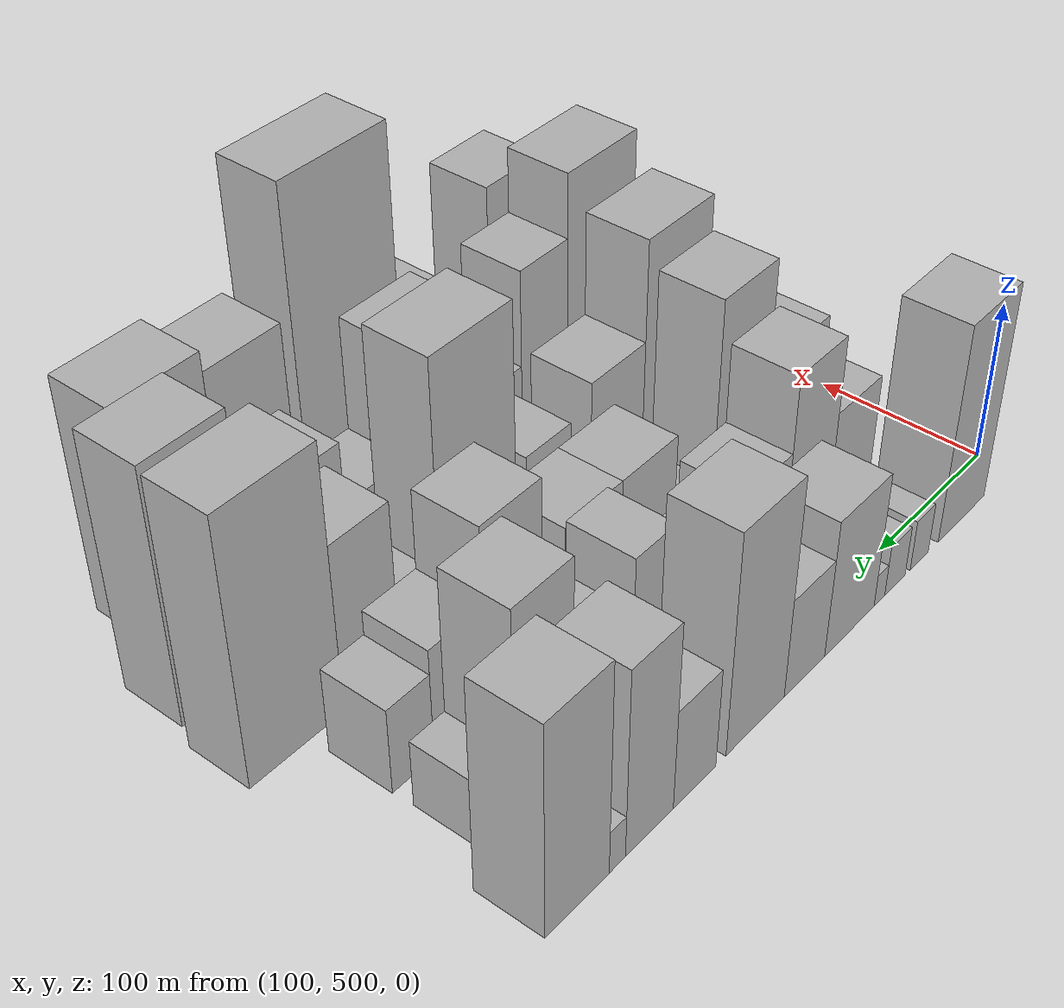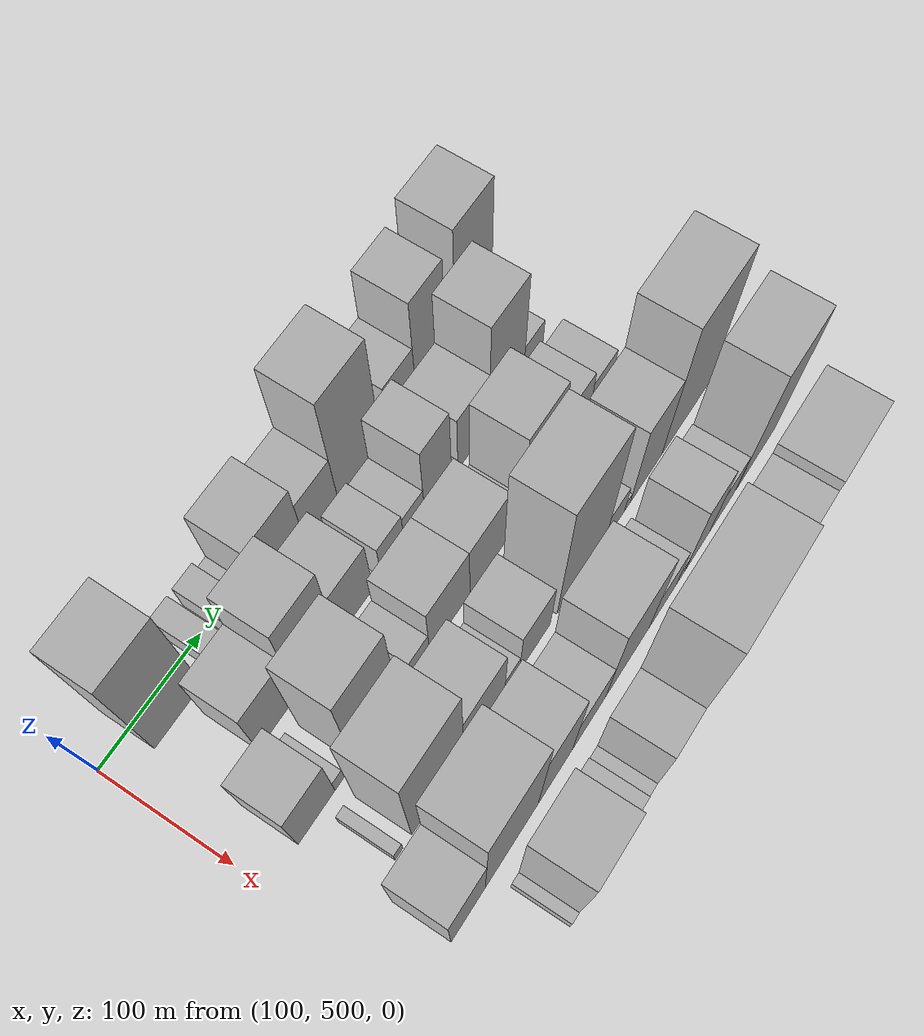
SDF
<sdf version="1.6">
 <world name="default">
  <model name="building_38">
   <static>1</static>
   <pose>100.0000 552.1882 0 0.000000 0.000000 0.000000</pose>
   <link name="link">
    <pose>0 0 69.00 0 0 0</pose>
    <collision name="collision"><geometry><box><size>40.0000 47.1673 138.0000</size></box></geometry></collision>
    <visual name="visual">
     <cast_shadows>0</cast_shadows>
     <geometry><box><size>40.0000 47.1673 138.0000</size></box></geometry>
     <material>
      <script>
       <uri>model://HANNAS_wall/materials/scripts</uri>
       <uri>model://HANNAS_wall/materials/textures</uri>
       <name>vrc/HANNAS_wall</name>
      </script>
     </material>
    </visual>
   </link>
  </model>
  <model name="building_39">
   <static>1</static>
   <pose>100.0000 594.6555 0 0.000000 0.000000 0.000000</pose>
   <link name="link">
    <pose>0 0 16.50 0 0 0</pose>
    <collision name="collision"><geometry><box><size>40.0000 17.7672 33.0000</size></box></geometry></collision>
    <visual name="visual">
     <cast_shadows>0</cast_shadows>
     <geometry><box><size>40.0000 17.7672 33.0000</size></box></geometry>
     <material>
      <script>
       <uri>model://HANNAS_wall/materials/scripts</uri>
       <uri>model://HANNAS_wall/materials/textures</uri>
       <name>vrc/HANNAS_wall</name>
      </script>
     </material>
    </visual>
   </link>
  </model>
  <model name="building_40">
   <static>1</static>
   <pose>100.0000 618.3071 0 0.000000 0.000000 0.000000</pose>
   <link name="link">
    <pose>0 0 16.50 0 0 0</pose>
    <collision name="collision"><geometry><box><size>40.0000 19.5360 33.0000</size></box></geometry></collision>
    <visual name="visual">
     <cast_shadows>0</cast_shadows>
     <geometry><box><size>40.0000 19.5360 33.0000</size></box></geometry>
     <material>
      <script>
       <uri>model://HANNAS_wall/materials/scripts</uri>
       <uri>model://HANNAS_wall/materials/textures</uri>
       <name>vrc/HANNAS_wall</name>
      </script>
     </material>
    </visual>
   </link>
  </model>
  <model name="building_41">
   <static>1</static>
   <pose>100.0000 633.0724 0 0.000000 0.000000 0.000000</pose>
   <link name="link">
    <pose>0 0 10.50 0 0 0</pose>
    <collision name="collision"><geometry><box><size>40.0000 9.9947 21.0000</size></box></geometry></collision>
    <visual name="visual">
     <cast_shadows>0</cast_shadows>
     <geometry><box><size>40.0000 9.9947 21.0000</size></box></geometry>
     <material>
      <script>
       <uri>model://HANNAS_wall/materials/scripts</uri>
       <uri>model://HANNAS_wall/materials/textures</uri>
       <name>vrc/HANNAS_wall</name>
      </script>
     </material>
    </visual>
   </link>
  </model>
  <model name="building_42">
   <static>1</static>
   <pose>100.0000 660.5055 0 0.000000 0.000000 0.000000</pose>
   <link name="link">
    <pose>0 0 43.50 0 0 0</pose>
    <collision name="collision"><geometry><box><size>40.0000 44.8715 87.0000</size></box></geometry></collision>
    <visual name="visual">
     <cast_shadows>0</cast_shadows>
     <geometry><box><size>40.0000 44.8715 87.0000</size></box></geometry>
     <material>
      <script>
       <uri>model://HANNAS_wall/materials/scripts</uri>
       <uri>model://HANNAS_wall/materials/textures</uri>
       <name>vrc/HANNAS_wall</name>
      </script>
     </material>
    </visual>
   </link>
  </model>
  <model name="building_43">
   <static>1</static>
   <pose>100.0000 700.4479 0 0.000000 0.000000 0.000000</pose>
   <link name="link">
    <pose>0 0 31.50 0 0 0</pose>
    <collision name="collision"><geometry><box><size>40.0000 35.0133 63.0000</size></box></geometry></collision>
    <visual name="visual">
     <cast_shadows>0</cast_shadows>
     <geometry><box><size>40.0000 35.0133 63.0000</size></box></geometry>
     <material>
      <script>
       <uri>model://HANNAS_wall/materials/scripts</uri>
       <uri>model://HANNAS_wall/materials/textures</uri>
       <name>vrc/HANNAS_wall</name>
      </script>
     </material>
    </visual>
   </link>
  </model>
  <model name="building_44">
   <static>1</static>
   <pose>100.0000 741.8264 0 0.000000 0.000000 0.000000</pose>
   <link name="link">
    <pose>0 0 69.00 0 0 0</pose>
    <collision name="collision"><geometry><box><size>40.0000 47.7437 138.0000</size></box></geometry></collision>
    <visual name="visual">
     <cast_shadows>0</cast_shadows>
     <geometry><box><size>40.0000 47.7437 138.0000</size></box></geometry>
     <material>
      <script>
       <uri>model://HANNAS_wall/materials/scripts</uri>
       <uri>model://HANNAS_wall/materials/textures</uri>
       <name>vrc/HANNAS_wall</name>
      </script>
     </material>
    </visual>
   </link>
  </model>
  <model name="building_45">
   <static>1</static>
   <pose>100.0000 790.0585 0 0.000000 0.000000 0.000000</pose>
   <link name="link">
    <pose>0 0 31.50 0 0 0</pose>
    <collision name="collision"><geometry><box><size>40.0000 32.7206 63.0000</size></box></geometry></collision>
    <visual name="visual">
     <cast_shadows>0</cast_shadows>
     <geometry><box><size>40.0000 32.7206 63.0000</size></box></geometry>
     <material>
      <script>
       <uri>model://HANNAS_wall/materials/scripts</uri>
       <uri>model://HANNAS_wall/materials/textures</uri>
       <name>vrc/HANNAS_wall</name>
      </script>
     </material>
    </visual>
   </link>
  </model>
  <model name="building_46">
   <static>1</static>
   <pose>100.0000 824.0037 0 0.000000 0.000000 0.000000</pose>
   <link name="link">
    <pose>0 0 58.50 0 0 0</pose>
    <collision name="collision"><geometry><box><size>40.0000 35.1697 117.0000</size></box></geometry></collision>
    <visual name="visual">
     <cast_shadows>0</cast_shadows>
     <geometry><box><size>40.0000 35.1697 117.0000</size></box></geometry>
     <material>
      <script>
       <uri>model://HANNAS_wall/materials/scripts</uri>
       <uri>model://HANNAS_wall/materials/textures</uri>
       <name>vrc/HANNAS_wall</name>
      </script>
     </material>
    </visual>
   </link>
  </model>
  <model name="building_47">
   <static>1</static>
   <pose>100.0000 847.3226 0 0.000000 0.000000 0.000000</pose>
   <link name="link">
    <pose>0 0 13.50 0 0 0</pose>
    <collision name="collision"><geometry><box><size>40.0000 11.4682 27.0000</size></box></geometry></collision>
    <visual name="visual">
     <cast_shadows>0</cast_shadows>
     <geometry><box><size>40.0000 11.4682 27.0000</size></box></geometry>
     <material>
      <script>
       <uri>model://HANNAS_wall/materials/scripts</uri>
       <uri>model://HANNAS_wall/materials/textures</uri>
       <name>vrc/HANNAS_wall</name>
      </script>
     </material>
    </visual>
   </link>
  </model>
  <model name="building_48">
   <static>1</static>
   <pose>100.0000 875.0531 0 0.000000 0.000000 0.000000</pose>
   <link name="link">
    <pose>0 0 66.00 0 0 0</pose>
    <collision name="collision"><geometry><box><size>40.0000 43.9929 132.0000</size></box></geometry></collision>
    <visual name="visual">
     <cast_shadows>0</cast_shadows>
     <geometry><box><size>40.0000 43.9929 132.0000</size></box></geometry>
     <material>
      <script>
       <uri>model://HANNAS_wall/materials/scripts</uri>
       <uri>model://HANNAS_wall/materials/textures</uri>
       <name>vrc/HANNAS_wall</name>
      </script>
     </material>
    </visual>
   </link>
  </model>
  <model name="building_88">
   <static>1</static>
   <pose>152.0000 581.7255 0 0.000000 0.000000 0.000000</pose>
   <link name="link">
    <pose>0 0 37.50 0 0 0</pose>
    <collision name="collision"><geometry><box><size>40.0000 40.5340 75.0000</size></box></geometry></collision>
    <visual name="visual">
     <cast_shadows>0</cast_shadows>
     <geometry><box><size>40.0000 40.5340 75.0000</size></box></geometry>
     <material>
      <script>
       <uri>model://HANNAS_wall/materials/scripts</uri>
       <uri>model://HANNAS_wall/materials/textures</uri>
       <name>vrc/HANNAS_wall</name>
      </script>
     </material>
    </visual>
   </link>
  </model>
  <model name="building_89">
   <static>1</static>
   <pose>152.0000 622.5779 0 0.000000 0.000000 0.000000</pose>
   <link name="link">
    <pose>0 0 61.50 0 0 0</pose>
    <collision name="collision"><geometry><box><size>40.0000 41.1708 123.0000</size></box></geometry></collision>
    <visual name="visual">
     <cast_shadows>0</cast_shadows>
     <geometry><box><size>40.0000 41.1708 123.0000</size></box></geometry>
     <material>
      <script>
       <uri>model://HANNAS_wall/materials/scripts</uri>
       <uri>model://HANNAS_wall/materials/textures</uri>
       <name>vrc/HANNAS_wall</name>
      </script>
     </material>
    </visual>
   </link>
  </model>
  <model name="building_90">
   <static>1</static>
   <pose>152.0000 662.4234 0 0.000000 0.000000 0.000000</pose>
   <link name="link">
    <pose>0 0 37.50 0 0 0</pose>
    <collision name="collision"><geometry><box><size>40.0000 38.5201 75.0000</size></box></geometry></collision>
    <visual name="visual">
     <cast_shadows>0</cast_shadows>
     <geometry><box><size>40.0000 38.5201 75.0000</size></box></geometry>
     <material>
      <script>
       <uri>model://HANNAS_wall/materials/scripts</uri>
       <uri>model://HANNAS_wall/materials/textures</uri>
       <name>vrc/HANNAS_wall</name>
      </script>
     </material>
    </visual>
   </link>
  </model>
  <model name="building_91">
   <static>1</static>
   <pose>152.0000 703.5241 0 0.000000 0.000000 0.000000</pose>
   <link name="link">
    <pose>0 0 24.00 0 0 0</pose>
    <collision name="collision"><geometry><box><size>40.0000 25.6815 48.0000</size></box></geometry></collision>
    <visual name="visual">
     <cast_shadows>0</cast_shadows>
     <geometry><box><size>40.0000 25.6815 48.0000</size></box></geometry>
     <material>
      <script>
       <uri>model://HANNAS_wall/materials/scripts</uri>
       <uri>model://HANNAS_wall/materials/textures</uri>
       <name>vrc/HANNAS_wall</name>
      </script>
     </material>
    </visual>
   </link>
  </model>
  <model name="building_92">
   <static>1</static>
   <pose>152.0000 727.7522 0 0.000000 0.000000 0.000000</pose>
   <link name="link">
    <pose>0 0 21.00 0 0 0</pose>
    <collision name="collision"><geometry><box><size>40.0000 22.7747 42.0000</size></box></geometry></collision>
    <visual name="visual">
     <cast_shadows>0</cast_shadows>
     <geometry><box><size>40.0000 22.7747 42.0000</size></box></geometry>
     <material>
      <script>
       <uri>model://HANNAS_wall/materials/scripts</uri>
       <uri>model://HANNAS_wall/materials/textures</uri>
       <name>vrc/HANNAS_wall</name>
      </script>
     </material>
    </visual>
   </link>
  </model>
  <model name="building_93">
   <static>1</static>
   <pose>152.0000 754.4738 0 0.000000 0.000000 0.000000</pose>
   <link name="link">
    <pose>0 0 48.00 0 0 0</pose>
    <collision name="collision"><geometry><box><size>40.0000 30.6684 96.0000</size></box></geometry></collision>
    <visual name="visual">
     <cast_shadows>0</cast_shadows>
     <geometry><box><size>40.0000 30.6684 96.0000</size></box></geometry>
     <material>
      <script>
       <uri>model://HANNAS_wall/materials/scripts</uri>
       <uri>model://HANNAS_wall/materials/textures</uri>
       <name>vrc/HANNAS_wall</name>
      </script>
     </material>
    </visual>
   </link>
  </model>
  <model name="building_94">
   <static>1</static>
   <pose>152.0000 773.4286 0 0.000000 0.000000 0.000000</pose>
   <link name="link">
    <pose>0 0 7.50 0 0 0</pose>
    <collision name="collision"><geometry><box><size>40.0000 7.2412 15.0000</size></box></geometry></collision>
    <visual name="visual">
     <cast_shadows>0</cast_shadows>
     <geometry><box><size>40.0000 7.2412 15.0000</size></box></geometry>
     <material>
      <script>
       <uri>model://HANNAS_wall/materials/scripts</uri>
       <uri>model://HANNAS_wall/materials/textures</uri>
       <name>vrc/HANNAS_wall</name>
      </script>
     </material>
    </visual>
   </link>
  </model>
  <model name="building_95">
   <static>1</static>
   <pose>152.0000 795.3363 0 0.000000 0.000000 0.000000</pose>
   <link name="link">
    <pose>0 0 36.00 0 0 0</pose>
    <collision name="collision"><geometry><box><size>40.0000 36.5742 72.0000</size></box></geometry></collision>
    <visual name="visual">
     <cast_shadows>0</cast_shadows>
     <geometry><box><size>40.0000 36.5742 72.0000</size></box></geometry>
     <material>
      <script>
       <uri>model://HANNAS_wall/materials/scripts</uri>
       <uri>model://HANNAS_wall/materials/textures</uri>
       <name>vrc/HANNAS_wall</name>
      </script>
     </material>
    </visual>
   </link>
  </model>
  <model name="building_96">
   <static>1</static>
   <pose>152.0000 834.3439 0 0.000000 0.000000 0.000000</pose>
   <link name="link">
    <pose>0 0 64.50 0 0 0</pose>
    <collision name="collision"><geometry><box><size>40.0000 41.4409 129.0000</size></box></geometry></collision>
    <visual name="visual">
     <cast_shadows>0</cast_shadows>
     <geometry><box><size>40.0000 41.4409 129.0000</size></box></geometry>
     <material>
      <script>
       <uri>model://HANNAS_wall/materials/scripts</uri>
       <uri>model://HANNAS_wall/materials/textures</uri>
       <name>vrc/HANNAS_wall</name>
      </script>
     </material>
    </visual>
   </link>
  </model>
  <model name="building_97">
   <static>1</static>
   <pose>152.0000 866.7013 0 0.000000 0.000000 0.000000</pose>
   <link name="link">
    <pose>0 0 21.00 0 0 0</pose>
    <collision name="collision"><geometry><box><size>40.0000 23.2739 42.0000</size></box></geometry></collision>
    <visual name="visual">
     <cast_shadows>0</cast_shadows>
     <geometry><box><size>40.0000 23.2739 42.0000</size></box></geometry>
     <material>
      <script>
       <uri>model://HANNAS_wall/materials/scripts</uri>
       <uri>model://HANNAS_wall/materials/textures</uri>
       <name>vrc/HANNAS_wall</name>
      </script>
     </material>
    </visual>
   </link>
  </model>
  <model name="building_140">
   <static>1</static>
   <pose>204.0000 548.4280 0 0.000000 0.000000 0.000000</pose>
   <link name="link">
    <pose>0 0 36.00 0 0 0</pose>
    <collision name="collision"><geometry><box><size>40.0000 37.1659 72.0000</size></box></geometry></collision>
    <visual name="visual">
     <cast_shadows>0</cast_shadows>
     <geometry><box><size>40.0000 37.1659 72.0000</size></box></geometry>
     <material>
      <script>
       <uri>model://HANNAS_wall/materials/scripts</uri>
       <uri>model://HANNAS_wall/materials/textures</uri>
       <name>vrc/HANNAS_wall</name>
      </script>
     </material>
    </visual>
   </link>
  </model>
  <model name="building_141">
   <static>1</static>
   <pose>204.0000 571.7912 0 0.000000 0.000000 0.000000</pose>
   <link name="link">
    <pose>0 0 10.50 0 0 0</pose>
    <collision name="collision"><geometry><box><size>40.0000 9.5604 21.0000</size></box></geometry></collision>
    <visual name="visual">
     <cast_shadows>0</cast_shadows>
     <geometry><box><size>40.0000 9.5604 21.0000</size></box></geometry>
     <material>
      <script>
       <uri>model://HANNAS_wall/materials/scripts</uri>
       <uri>model://HANNAS_wall/materials/textures</uri>
       <name>vrc/HANNAS_wall</name>
      </script>
     </material>
    </visual>
   </link>
  </model>
  <model name="building_142">
   <static>1</static>
   <pose>204.0000 609.7211 0 0.000000 0.000000 0.000000</pose>
   <link name="link">
    <pose>0 0 69.00 0 0 0</pose>
    <collision name="collision"><geometry><box><size>40.0000 46.2994 138.0000</size></box></geometry></collision>
    <visual name="visual">
     <cast_shadows>0</cast_shadows>
     <geometry><box><size>40.0000 46.2994 138.0000</size></box></geometry>
     <material>
      <script>
       <uri>model://HANNAS_wall/materials/scripts</uri>
       <uri>model://HANNAS_wall/materials/textures</uri>
       <name>vrc/HANNAS_wall</name>
      </script>
     </material>
    </visual>
   </link>
  </model>
  <model name="building_143">
   <static>1</static>
   <pose>204.0000 641.4831 0 0.000000 0.000000 0.000000</pose>
   <link name="link">
    <pose>0 0 10.50 0 0 0</pose>
    <collision name="collision"><geometry><box><size>40.0000 9.2246 21.0000</size></box></geometry></collision>
    <visual name="visual">
     <cast_shadows>0</cast_shadows>
     <geometry><box><size>40.0000 9.2246 21.0000</size></box></geometry>
     <material>
      <script>
       <uri>model://HANNAS_wall/materials/scripts</uri>
       <uri>model://HANNAS_wall/materials/textures</uri>
       <name>vrc/HANNAS_wall</name>
      </script>
     </material>
    </visual>
   </link>
  </model>
  <model name="building_144">
   <static>1</static>
   <pose>204.0000 656.4562 0 0.000000 0.000000 0.000000</pose>
   <link name="link">
    <pose>0 0 18.00 0 0 0</pose>
    <collision name="collision"><geometry><box><size>40.0000 20.7214 36.0000</size></box></geometry></collision>
    <visual name="visual">
     <cast_shadows>0</cast_shadows>
     <geometry><box><size>40.0000 20.7214 36.0000</size></box></geometry>
     <material>
      <script>
       <uri>model://HANNAS_wall/materials/scripts</uri>
       <uri>model://HANNAS_wall/materials/textures</uri>
       <name>vrc/HANNAS_wall</name>
      </script>
     </material>
    </visual>
   </link>
  </model>
  <model name="building_145">
   <static>1</static>
   <pose>204.0000 689.1216 0 0.000000 0.000000 0.000000</pose>
   <link name="link">
    <pose>0 0 37.50 0 0 0</pose>
    <collision name="collision"><geometry><box><size>40.0000 44.6094 75.0000</size></box></geometry></collision>
    <visual name="visual">
     <cast_shadows>0</cast_shadows>
     <geometry><box><size>40.0000 44.6094 75.0000</size></box></geometry>
     <material>
      <script>
       <uri>model://HANNAS_wall/materials/scripts</uri>
       <uri>model://HANNAS_wall/materials/textures</uri>
       <name>vrc/HANNAS_wall</name>
      </script>
     </material>
    </visual>
   </link>
  </model>
  <model name="building_146">
   <static>1</static>
   <pose>204.0000 733.4616 0 0.000000 0.000000 0.000000</pose>
   <link name="link">
    <pose>0 0 37.50 0 0 0</pose>
    <collision name="collision"><geometry><box><size>40.0000 44.0707 75.0000</size></box></geometry></collision>
    <visual name="visual">
     <cast_shadows>0</cast_shadows>
     <geometry><box><size>40.0000 44.0707 75.0000</size></box></geometry>
     <material>
      <script>
       <uri>model://HANNAS_wall/materials/scripts</uri>
       <uri>model://HANNAS_wall/materials/textures</uri>
       <name>vrc/HANNAS_wall</name>
      </script>
     </material>
    </visual>
   </link>
  </model>
  <model name="building_147">
   <static>1</static>
   <pose>204.0000 763.9253 0 0.000000 0.000000 0.000000</pose>
   <link name="link">
    <pose>0 0 16.50 0 0 0</pose>
    <collision name="collision"><geometry><box><size>40.0000 16.8568 33.0000</size></box></geometry></collision>
    <visual name="visual">
     <cast_shadows>0</cast_shadows>
     <geometry><box><size>40.0000 16.8568 33.0000</size></box></geometry>
     <material>
      <script>
       <uri>model://HANNAS_wall/materials/scripts</uri>
       <uri>model://HANNAS_wall/materials/textures</uri>
       <name>vrc/HANNAS_wall</name>
      </script>
     </material>
    </visual>
   </link>
  </model>
  <model name="building_148">
   <static>1</static>
   <pose>204.0000 793.7273 0 0.000000 0.000000 0.000000</pose>
   <link name="link">
    <pose>0 0 58.50 0 0 0</pose>
    <collision name="collision"><geometry><box><size>40.0000 42.7472 117.0000</size></box></geometry></collision>
    <visual name="visual">
     <cast_shadows>0</cast_shadows>
     <geometry><box><size>40.0000 42.7472 117.0000</size></box></geometry>
     <material>
      <script>
       <uri>model://HANNAS_wall/materials/scripts</uri>
       <uri>model://HANNAS_wall/materials/textures</uri>
       <name>vrc/HANNAS_wall</name>
      </script>
     </material>
    </visual>
   </link>
  </model>
  <model name="building_149">
   <static>1</static>
   <pose>204.0000 833.0762 0 0.000000 0.000000 0.000000</pose>
   <link name="link">
    <pose>0 0 34.50 0 0 0</pose>
    <collision name="collision"><geometry><box><size>40.0000 35.9505 69.0000</size></box></geometry></collision>
    <visual name="visual">
     <cast_shadows>0</cast_shadows>
     <geometry><box><size>40.0000 35.9505 69.0000</size></box></geometry>
     <material>
      <script>
       <uri>model://HANNAS_wall/materials/scripts</uri>
       <uri>model://HANNAS_wall/materials/textures</uri>
       <name>vrc/HANNAS_wall</name>
      </script>
     </material>
    </visual>
   </link>
  </model>
  <model name="building_150">
   <static>1</static>
   <pose>204.0000 865.1803 0 0.000000 0.000000 0.000000</pose>
   <link name="link">
    <pose>0 0 27.00 0 0 0</pose>
    <collision name="collision"><geometry><box><size>40.0000 28.2576 54.0000</size></box></geometry></collision>
    <visual name="visual">
     <cast_shadows>0</cast_shadows>
     <geometry><box><size>40.0000 28.2576 54.0000</size></box></geometry>
     <material>
      <script>
       <uri>model://HANNAS_wall/materials/scripts</uri>
       <uri>model://HANNAS_wall/materials/textures</uri>
       <name>vrc/HANNAS_wall</name>
      </script>
     </material>
    </visual>
   </link>
  </model>
  <model name="building_186">
   <static>1</static>
   <pose>256.0000 557.1760 0 0.000000 0.000000 0.000000</pose>
   <link name="link">
    <pose>0 0 9.00 0 0 0</pose>
    <collision name="collision"><geometry><box><size>40.0000 8.1659 18.0000</size></box></geometry></collision>
    <visual name="visual">
     <cast_shadows>0</cast_shadows>
     <geometry><box><size>40.0000 8.1659 18.0000</size></box></geometry>
     <material>
      <script>
       <uri>model://HANNAS_wall/materials/scripts</uri>
       <uri>model://HANNAS_wall/materials/textures</uri>
       <name>vrc/HANNAS_wall</name>
      </script>
     </material>
    </visual>
   </link>
  </model>
  <model name="building_187">
   <static>1</static>
   <pose>256.0000 597.7654 0 0.000000 0.000000 0.000000</pose>
   <link name="link">
    <pose>0 0 73.50 0 0 0</pose>
    <collision name="collision"><geometry><box><size>40.0000 55.0129 147.0000</size></box></geometry></collision>
    <visual name="visual">
     <cast_shadows>0</cast_shadows>
     <geometry><box><size>40.0000 55.0129 147.0000</size></box></geometry>
     <material>
      <script>
       <uri>model://HANNAS_wall/materials/scripts</uri>
       <uri>model://HANNAS_wall/materials/textures</uri>
       <name>vrc/HANNAS_wall</name>
      </script>
     </material>
    </visual>
   </link>
  </model>
  <model name="building_188">
   <static>1</static>
   <pose>256.0000 647.6145 0 0.000000 0.000000 0.000000</pose>
   <link name="link">
    <pose>0 0 42.00 0 0 0</pose>
    <collision name="collision"><geometry><box><size>40.0000 44.6853 84.0000</size></box></geometry></collision>
    <visual name="visual">
     <cast_shadows>0</cast_shadows>
     <geometry><box><size>40.0000 44.6853 84.0000</size></box></geometry>
     <material>
      <script>
       <uri>model://HANNAS_wall/materials/scripts</uri>
       <uri>model://HANNAS_wall/materials/textures</uri>
       <name>vrc/HANNAS_wall</name>
      </script>
     </material>
    </visual>
   </link>
  </model>
  <model name="building_189">
   <static>1</static>
   <pose>256.0000 678.3156 0 0.000000 0.000000 0.000000</pose>
   <link name="link">
    <pose>0 0 15.00 0 0 0</pose>
    <collision name="collision"><geometry><box><size>40.0000 16.7168 30.0000</size></box></geometry></collision>
    <visual name="visual">
     <cast_shadows>0</cast_shadows>
     <geometry><box><size>40.0000 16.7168 30.0000</size></box></geometry>
     <material>
      <script>
       <uri>model://HANNAS_wall/materials/scripts</uri>
       <uri>model://HANNAS_wall/materials/textures</uri>
       <name>vrc/HANNAS_wall</name>
      </script>
     </material>
    </visual>
   </link>
  </model>
  <model name="building_190">
   <static>1</static>
   <pose>256.0000 704.2560 0 0.000000 0.000000 0.000000</pose>
   <link name="link">
    <pose>0 0 34.50 0 0 0</pose>
    <collision name="collision"><geometry><box><size>40.0000 35.1640 69.0000</size></box></geometry></collision>
    <visual name="visual">
     <cast_shadows>0</cast_shadows>
     <geometry><box><size>40.0000 35.1640 69.0000</size></box></geometry>
     <material>
      <script>
       <uri>model://HANNAS_wall/materials/scripts</uri>
       <uri>model://HANNAS_wall/materials/textures</uri>
       <name>vrc/HANNAS_wall</name>
      </script>
     </material>
    </visual>
   </link>
  </model>
  <model name="building_191">
   <static>1</static>
   <pose>256.0000 758.6335 0 0.000000 0.000000 0.000000</pose>
   <link name="link">
    <pose>0 0 84.00 0 0 0</pose>
    <collision name="collision"><geometry><box><size>40.0000 57.5908 168.0000</size></box></geometry></collision>
    <visual name="visual">
     <cast_shadows>0</cast_shadows>
     <geometry><box><size>40.0000 57.5908 168.0000</size></box></geometry>
     <material>
      <script>
       <uri>model://HANNAS_wall/materials/scripts</uri>
       <uri>model://HANNAS_wall/materials/textures</uri>
       <name>vrc/HANNAS_wall</name>
      </script>
     </material>
    </visual>
   </link>
  </model>
  <model name="building_192">
   <static>1</static>
   <pose>256.0000 798.9391 0 0.000000 0.000000 0.000000</pose>
   <link name="link">
    <pose>0 0 19.50 0 0 0</pose>
    <collision name="collision"><geometry><box><size>40.0000 23.0204 39.0000</size></box></geometry></collision>
    <visual name="visual">
     <cast_shadows>0</cast_shadows>
     <geometry><box><size>40.0000 23.0204 39.0000</size></box></geometry>
     <material>
      <script>
       <uri>model://HANNAS_wall/materials/scripts</uri>
       <uri>model://HANNAS_wall/materials/textures</uri>
       <name>vrc/HANNAS_wall</name>
      </script>
     </material>
    </visual>
   </link>
  </model>
  <model name="building_193">
   <static>1</static>
   <pose>256.0000 814.0816 0 0.000000 0.000000 0.000000</pose>
   <link name="link">
    <pose>0 0 7.50 0 0 0</pose>
    <collision name="collision"><geometry><box><size>40.0000 7.2647 15.0000</size></box></geometry></collision>
    <visual name="visual">
     <cast_shadows>0</cast_shadows>
     <geometry><box><size>40.0000 7.2647 15.0000</size></box></geometry>
     <material>
      <script>
       <uri>model://HANNAS_wall/materials/scripts</uri>
       <uri>model://HANNAS_wall/materials/textures</uri>
       <name>vrc/HANNAS_wall</name>
      </script>
     </material>
    </visual>
   </link>
  </model>
  <model name="building_194">
   <static>1</static>
   <pose>256.0000 837.2742 0 0.000000 0.000000 0.000000</pose>
   <link name="link">
    <pose>0 0 52.50 0 0 0</pose>
    <collision name="collision"><geometry><box><size>40.0000 39.1204 105.0000</size></box></geometry></collision>
    <visual name="visual">
     <cast_shadows>0</cast_shadows>
     <geometry><box><size>40.0000 39.1204 105.0000</size></box></geometry>
     <material>
      <script>
       <uri>model://HANNAS_wall/materials/scripts</uri>
       <uri>model://HANNAS_wall/materials/textures</uri>
       <name>vrc/HANNAS_wall</name>
      </script>
     </material>
    </visual>
   </link>
  </model>
  <model name="building_195">
   <static>1</static>
   <pose>256.0000 887.6206 0 0.000000 0.000000 0.000000</pose>
   <link name="link">
    <pose>0 0 82.50 0 0 0</pose>
    <collision name="collision"><geometry><box><size>40.0000 61.5723 165.0000</size></box></geometry></collision>
    <visual name="visual">
     <cast_shadows>0</cast_shadows>
     <geometry><box><size>40.0000 61.5723 165.0000</size></box></geometry>
     <material>
      <script>
       <uri>model://HANNAS_wall/materials/scripts</uri>
       <uri>model://HANNAS_wall/materials/textures</uri>
       <name>vrc/HANNAS_wall</name>
      </script>
     </material>
    </visual>
   </link>
  </model>
  <model name="building_236">
   <static>1</static>
   <pose>308.0000 550.7804 0 0.000000 0.000000 0.000000</pose>
   <link name="link">
    <pose>0 0 51.00 0 0 0</pose>
    <collision name="collision"><geometry><box><size>40.0000 35.3964 102.0000</size></box></geometry></collision>
    <visual name="visual">
     <cast_shadows>0</cast_shadows>
     <geometry><box><size>40.0000 35.3964 102.0000</size></box></geometry>
     <material>
      <script>
       <uri>model://HANNAS_wall/materials/scripts</uri>
       <uri>model://HANNAS_wall/materials/textures</uri>
       <name>vrc/HANNAS_wall</name>
      </script>
     </material>
    </visual>
   </link>
  </model>
  <model name="building_237">
   <static>1</static>
   <pose>308.0000 596.7725 0 0.000000 0.000000 0.000000</pose>
   <link name="link">
    <pose>0 0 82.50 0 0 0</pose>
    <collision name="collision"><geometry><box><size>40.0000 56.5878 165.0000</size></box></geometry></collision>
    <visual name="visual">
     <cast_shadows>0</cast_shadows>
     <geometry><box><size>40.0000 56.5878 165.0000</size></box></geometry>
     <material>
      <script>
       <uri>model://HANNAS_wall/materials/scripts</uri>
       <uri>model://HANNAS_wall/materials/textures</uri>
       <name>vrc/HANNAS_wall</name>
      </script>
     </material>
    </visual>
   </link>
  </model>
  <model name="building_238">
   <static>1</static>
   <pose>308.0000 644.1979 0 0.000000 0.000000 0.000000</pose>
   <link name="link">
    <pose>0 0 63.00 0 0 0</pose>
    <collision name="collision"><geometry><box><size>40.0000 38.2628 126.0000</size></box></geometry></collision>
    <visual name="visual">
     <cast_shadows>0</cast_shadows>
     <geometry><box><size>40.0000 38.2628 126.0000</size></box></geometry>
     <material>
      <script>
       <uri>model://HANNAS_wall/materials/scripts</uri>
       <uri>model://HANNAS_wall/materials/textures</uri>
       <name>vrc/HANNAS_wall</name>
      </script>
     </material>
    </visual>
   </link>
  </model>
  <model name="building_239">
   <static>1</static>
   <pose>308.0000 682.3646 0 0.000000 0.000000 0.000000</pose>
   <link name="link">
    <pose>0 0 33.00 0 0 0</pose>
    <collision name="collision"><geometry><box><size>40.0000 38.0706 66.0000</size></box></geometry></collision>
    <visual name="visual">
     <cast_shadows>0</cast_shadows>
     <geometry><box><size>40.0000 38.0706 66.0000</size></box></geometry>
     <material>
      <script>
       <uri>model://HANNAS_wall/materials/scripts</uri>
       <uri>model://HANNAS_wall/materials/textures</uri>
       <name>vrc/HANNAS_wall</name>
      </script>
     </material>
    </visual>
   </link>
  </model>
  <model name="building_240">
   <static>1</static>
   <pose>308.0000 726.9366 0 0.000000 0.000000 0.000000</pose>
   <link name="link">
    <pose>0 0 64.50 0 0 0</pose>
    <collision name="collision"><geometry><box><size>40.0000 51.0733 129.0000</size></box></geometry></collision>
    <visual name="visual">
     <cast_shadows>0</cast_shadows>
     <geometry><box><size>40.0000 51.0733 129.0000</size></box></geometry>
     <material>
      <script>
       <uri>model://HANNAS_wall/materials/scripts</uri>
       <uri>model://HANNAS_wall/materials/textures</uri>
       <name>vrc/HANNAS_wall</name>
      </script>
     </material>
    </visual>
   </link>
  </model>
  <model name="building_241">
   <static>1</static>
   <pose>308.0000 769.2358 0 0.000000 0.000000 0.000000</pose>
   <link name="link">
    <pose>0 0 30.00 0 0 0</pose>
    <collision name="collision"><geometry><box><size>40.0000 33.5252 60.0000</size></box></geometry></collision>
    <visual name="visual">
     <cast_shadows>0</cast_shadows>
     <geometry><box><size>40.0000 33.5252 60.0000</size></box></geometry>
     <material>
      <script>
       <uri>model://HANNAS_wall/materials/scripts</uri>
       <uri>model://HANNAS_wall/materials/textures</uri>
       <name>vrc/HANNAS_wall</name>
      </script>
     </material>
    </visual>
   </link>
  </model>
  <model name="building_242">
   <static>1</static>
   <pose>308.0000 791.3155 0 0.000000 0.000000 0.000000</pose>
   <link name="link">
    <pose>0 0 12.00 0 0 0</pose>
    <collision name="collision"><geometry><box><size>40.0000 10.6342 24.0000</size></box></geometry></collision>
    <visual name="visual">
     <cast_shadows>0</cast_shadows>
     <geometry><box><size>40.0000 10.6342 24.0000</size></box></geometry>
     <material>
      <script>
       <uri>model://HANNAS_wall/materials/scripts</uri>
       <uri>model://HANNAS_wall/materials/textures</uri>
       <name>vrc/HANNAS_wall</name>
      </script>
     </material>
    </visual>
   </link>
  </model>
  <model name="building_243">
   <static>1</static>
   <pose>308.0000 811.9000 0 0.000000 0.000000 0.000000</pose>
   <link name="link">
    <pose>0 0 49.50 0 0 0</pose>
    <collision name="collision"><geometry><box><size>40.0000 30.5347 99.0000</size></box></geometry></collision>
    <visual name="visual">
     <cast_shadows>0</cast_shadows>
     <geometry><box><size>40.0000 30.5347 99.0000</size></box></geometry>
     <material>
      <script>
       <uri>model://HANNAS_wall/materials/scripts</uri>
       <uri>model://HANNAS_wall/materials/textures</uri>
       <name>vrc/HANNAS_wall</name>
      </script>
     </material>
    </visual>
   </link>
  </model>
  <model name="building_244">
   <static>1</static>
   <pose>308.0000 842.4738 0 0.000000 0.000000 0.000000</pose>
   <link name="link">
    <pose>0 0 30.00 0 0 0</pose>
    <collision name="collision"><geometry><box><size>40.0000 30.6131 60.0000</size></box></geometry></collision>
    <visual name="visual">
     <cast_shadows>0</cast_shadows>
     <geometry><box><size>40.0000 30.6131 60.0000</size></box></geometry>
     <material>
      <script>
       <uri>model://HANNAS_wall/materials/scripts</uri>
       <uri>model://HANNAS_wall/materials/textures</uri>
       <name>vrc/HANNAS_wall</name>
      </script>
     </material>
    </visual>
   </link>
  </model>
  <model name="building_245">
   <static>1</static>
   <pose>308.0000 886.2998 0 0.000000 0.000000 0.000000</pose>
   <link name="link">
    <pose>0 0 79.50 0 0 0</pose>
    <collision name="collision"><geometry><box><size>40.0000 51.0389 159.0000</size></box></geometry></collision>
    <visual name="visual">
     <cast_shadows>0</cast_shadows>
     <geometry><box><size>40.0000 51.0389 159.0000</size></box></geometry>
     <material>
      <script>
       <uri>model://HANNAS_wall/materials/scripts</uri>
       <uri>model://HANNAS_wall/materials/textures</uri>
       <name>vrc/HANNAS_wall</name>
      </script>
     </material>
    </visual>
   </link>
  </model>
  <model name="building_289">
   <static>1</static>
   <pose>360.0000 580.6574 0 0.000000 0.000000 0.000000</pose>
   <link name="link">
    <pose>0 0 9.00 0 0 0</pose>
    <collision name="collision"><geometry><box><size>40.0000 7.5796 18.0000</size></box></geometry></collision>
    <visual name="visual">
     <cast_shadows>0</cast_shadows>
     <geometry><box><size>40.0000 7.5796 18.0000</size></box></geometry>
     <material>
      <script>
       <uri>model://HANNAS_wall/materials/scripts</uri>
       <uri>model://HANNAS_wall/materials/textures</uri>
       <name>vrc/HANNAS_wall</name>
      </script>
     </material>
    </visual>
   </link>
  </model>
  <model name="building_290">
   <static>1</static>
   <pose>360.0000 606.5639 0 0.000000 0.000000 0.000000</pose>
   <link name="link">
    <pose>0 0 69.00 0 0 0</pose>
    <collision name="collision"><geometry><box><size>40.0000 44.2334 138.0000</size></box></geometry></collision>
    <visual name="visual">
     <cast_shadows>0</cast_shadows>
     <geometry><box><size>40.0000 44.2334 138.0000</size></box></geometry>
     <material>
      <script>
       <uri>model://HANNAS_wall/materials/scripts</uri>
       <uri>model://HANNAS_wall/materials/textures</uri>
       <name>vrc/HANNAS_wall</name>
      </script>
     </material>
    </visual>
   </link>
  </model>
  <model name="building_291">
   <static>1</static>
   <pose>360.0000 646.3122 0 0.000000 0.000000 0.000000</pose>
   <link name="link">
    <pose>0 0 19.50 0 0 0</pose>
    <collision name="collision"><geometry><box><size>40.0000 21.2633 39.0000</size></box></geometry></collision>
    <visual name="visual">
     <cast_shadows>0</cast_shadows>
     <geometry><box><size>40.0000 21.2633 39.0000</size></box></geometry>
     <material>
      <script>
       <uri>model://HANNAS_wall/materials/scripts</uri>
       <uri>model://HANNAS_wall/materials/textures</uri>
       <name>vrc/HANNAS_wall</name>
      </script>
     </material>
    </visual>
   </link>
  </model>
  <model name="building_292">
   <static>1</static>
   <pose>360.0000 662.4699 0 0.000000 0.000000 0.000000</pose>
   <link name="link">
    <pose>0 0 13.50 0 0 0</pose>
    <collision name="collision"><geometry><box><size>40.0000 11.0521 27.0000</size></box></geometry></collision>
    <visual name="visual">
     <cast_shadows>0</cast_shadows>
     <geometry><box><size>40.0000 11.0521 27.0000</size></box></geometry>
     <material>
      <script>
       <uri>model://HANNAS_wall/materials/scripts</uri>
       <uri>model://HANNAS_wall/materials/textures</uri>
       <name>vrc/HANNAS_wall</name>
      </script>
     </material>
    </visual>
   </link>
  </model>
  <model name="building_293">
   <static>1</static>
   <pose>360.0000 683.7221 0 0.000000 0.000000 0.000000</pose>
   <link name="link">
    <pose>0 0 51.00 0 0 0</pose>
    <collision name="collision"><geometry><box><size>40.0000 31.4522 102.0000</size></box></geometry></collision>
    <visual name="visual">
     <cast_shadows>0</cast_shadows>
     <geometry><box><size>40.0000 31.4522 102.0000</size></box></geometry>
     <material>
      <script>
       <uri>model://HANNAS_wall/materials/scripts</uri>
       <uri>model://HANNAS_wall/materials/textures</uri>
       <name>vrc/HANNAS_wall</name>
      </script>
     </material>
    </visual>
   </link>
  </model>
  <model name="building_294">
   <static>1</static>
   <pose>360.0000 735.9189 0 0.000000 0.000000 0.000000</pose>
   <link name="link">
    <pose>0 0 105.00 0 0 0</pose>
    <collision name="collision"><geometry><box><size>40.0000 72.9415 210.0000</size></box></geometry></collision>
    <visual name="visual">
     <cast_shadows>0</cast_shadows>
     <geometry><box><size>40.0000 72.9415 210.0000</size></box></geometry>
     <material>
      <script>
       <uri>model://HANNAS_wall/materials/scripts</uri>
       <uri>model://HANNAS_wall/materials/textures</uri>
       <name>vrc/HANNAS_wall</name>
      </script>
     </material>
    </visual>
   </link>
  </model>
  <model name="building_295">
   <static>1</static>
   <pose>360.0000 804.4783 0 0.000000 0.000000 0.000000</pose>
   <link name="link">
    <pose>0 0 67.50 0 0 0</pose>
    <collision name="collision"><geometry><box><size>40.0000 50.1773 135.0000</size></box></geometry></collision>
    <visual name="visual">
     <cast_shadows>0</cast_shadows>
     <geometry><box><size>40.0000 50.1773 135.0000</size></box></geometry>
     <material>
      <script>
       <uri>model://HANNAS_wall/materials/scripts</uri>
       <uri>model://HANNAS_wall/materials/textures</uri>
       <name>vrc/HANNAS_wall</name>
      </script>
     </material>
    </visual>
   </link>
  </model>
  <model name="building_296">
   <static>1</static>
   <pose>360.0000 857.2310 0 0.000000 0.000000 0.000000</pose>
   <link name="link">
    <pose>0 0 73.50 0 0 0</pose>
    <collision name="collision"><geometry><box><size>40.0000 55.3281 147.0000</size></box></geometry></collision>
    <visual name="visual">
     <cast_shadows>0</cast_shadows>
     <geometry><box><size>40.0000 55.3281 147.0000</size></box></geometry>
     <material>
      <script>
       <uri>model://HANNAS_wall/materials/scripts</uri>
       <uri>model://HANNAS_wall/materials/textures</uri>
       <name>vrc/HANNAS_wall</name>
      </script>
     </material>
    </visual>
   </link>
  </model>
 </world>
</sdf>
